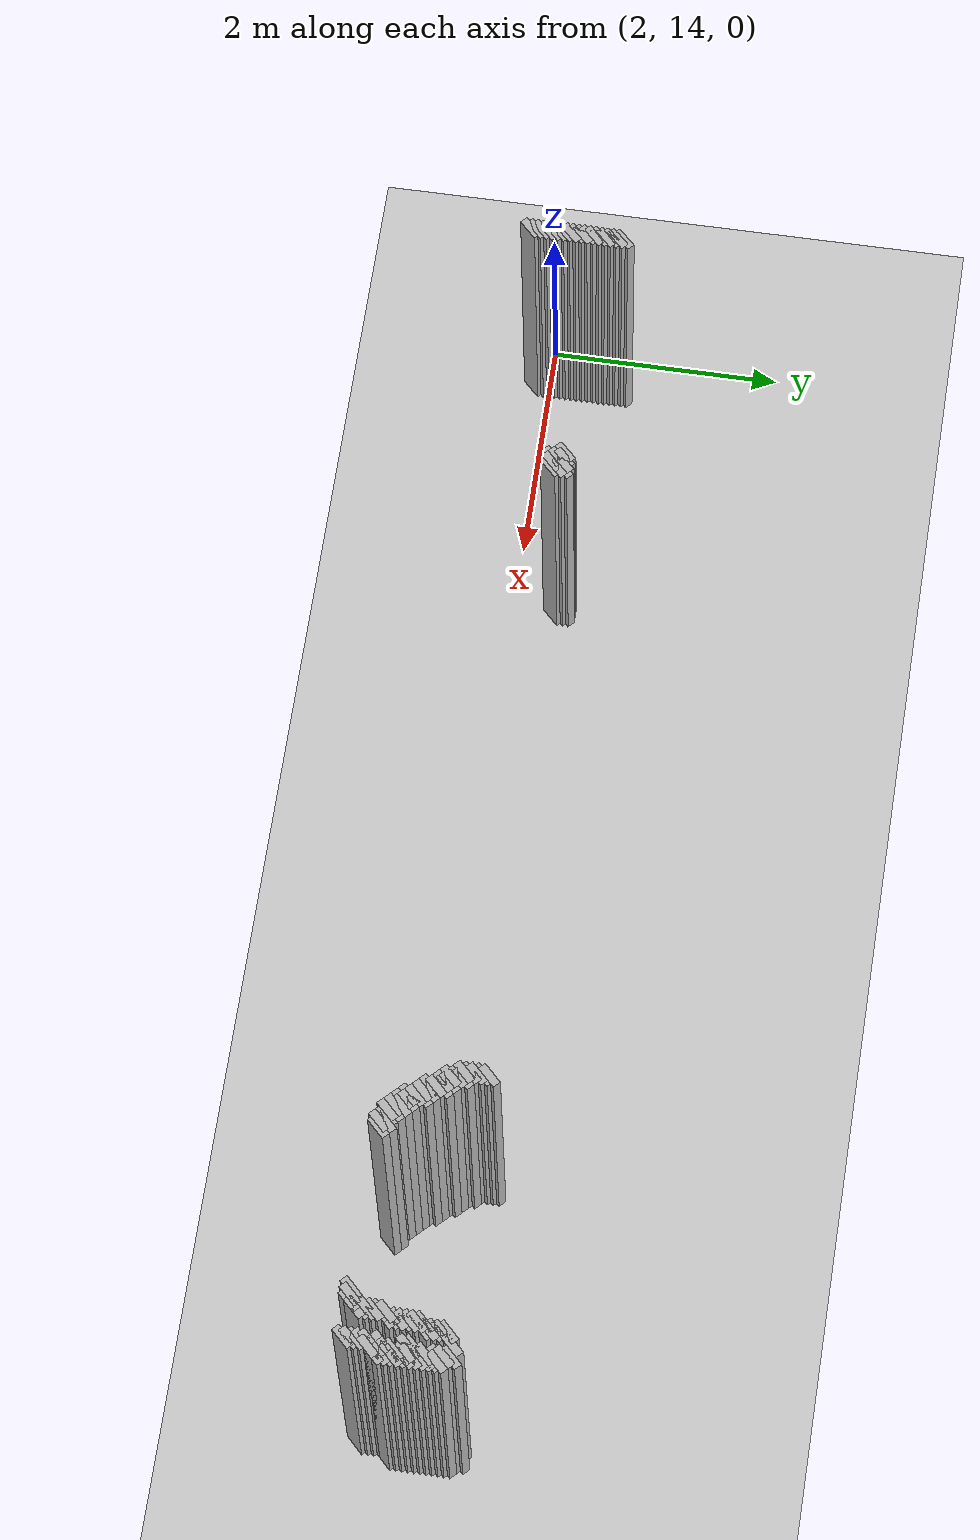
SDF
<sdf version="1.5">
 <world name="default">
  <include><uri>model://ground_plane</uri></include>
  <include><uri>model://sun</uri></include>
  <model name="grey_wall_531">
   <static>1</static>
   <link name="link">
    <pose>12.3 14.700000000000001  1.4 0 0 -0.7853981633974483</pose>
    <collision name="collision">
     <geometry><box><size>0.07071067811865576 .2  2.8</size></box></geometry>
    </collision>
    <visual name="visual">
     <cast_shadows>0</cast_shadows>
     <geometry><box><size>0.07071067811865576 .2  2.8</size></box></geometry>
    </visual>
   </link>
  </model>
  <model name="grey_wall_532">
   <static>1</static>
   <link name="link">
    <pose>12.4 14.700000000000001  1.4 0 0 -0.7853981633974483</pose>
    <collision name="collision">
     <geometry><box><size>0.07071067811865576 .2  2.8</size></box></geometry>
    </collision>
    <visual name="visual">
     <cast_shadows>0</cast_shadows>
     <geometry><box><size>0.07071067811865576 .2  2.8</size></box></geometry>
    </visual>
   </link>
  </model>
  <model name="grey_wall_533">
   <static>1</static>
   <link name="link">
    <pose>2.35 14.65  1.4 0 0 -0.7853981633974572</pose>
    <collision name="collision">
     <geometry><box><size>0.07071067811865513 .2  2.8</size></box></geometry>
    </collision>
    <visual name="visual">
     <cast_shadows>0</cast_shadows>
     <geometry><box><size>0.07071067811865513 .2  2.8</size></box></geometry>
    </visual>
   </link>
  </model>
  <model name="grey_wall_534">
   <static>1</static>
   <link name="link">
    <pose>10.05 14.65  1.4 0 0 -0.7853981633974483</pose>
    <collision name="collision">
     <geometry><box><size>0.07071067811865576 .2  2.8</size></box></geometry>
    </collision>
    <visual name="visual">
     <cast_shadows>0</cast_shadows>
     <geometry><box><size>0.07071067811865576 .2  2.8</size></box></geometry>
    </visual>
   </link>
  </model>
  <model name="grey_wall_535">
   <static>1</static>
   <link name="link">
    <pose>12.200000000000001 14.65  1.4 0 0 -0.7853981633974483</pose>
    <collision name="collision">
     <geometry><box><size>0.07071067811865576 .2  2.8</size></box></geometry>
    </collision>
    <visual name="visual">
     <cast_shadows>0</cast_shadows>
     <geometry><box><size>0.07071067811865576 .2  2.8</size></box></geometry>
    </visual>
   </link>
  </model>
  <model name="grey_wall_536">
   <static>1</static>
   <link name="link">
    <pose>12.4 14.65  1.4 0 0 -0.7853981633974483</pose>
    <collision name="collision">
     <geometry><box><size>0.07071067811865576 .2  2.8</size></box></geometry>
    </collision>
    <visual name="visual">
     <cast_shadows>0</cast_shadows>
     <geometry><box><size>0.07071067811865576 .2  2.8</size></box></geometry>
    </visual>
   </link>
  </model>
  <model name="grey_wall_537">
   <static>1</static>
   <link name="link">
    <pose>2.35 14.600000000000001  1.4 0 0 -0.7853981633974572</pose>
    <collision name="collision">
     <geometry><box><size>0.07071067811865513 .2  2.8</size></box></geometry>
    </collision>
    <visual name="visual">
     <cast_shadows>0</cast_shadows>
     <geometry><box><size>0.07071067811865513 .2  2.8</size></box></geometry>
    </visual>
   </link>
  </model>
  <model name="grey_wall_538">
   <static>1</static>
   <link name="link">
    <pose>10.05 14.600000000000001  1.4 0 0 -0.7853981633974483</pose>
    <collision name="collision">
     <geometry><box><size>0.07071067811865576 .2  2.8</size></box></geometry>
    </collision>
    <visual name="visual">
     <cast_shadows>0</cast_shadows>
     <geometry><box><size>0.07071067811865576 .2  2.8</size></box></geometry>
    </visual>
   </link>
  </model>
  <model name="grey_wall_539">
   <static>1</static>
   <link name="link">
    <pose>12.200000000000001 14.600000000000001  1.4 0 0 -0.7853981633974483</pose>
    <collision name="collision">
     <geometry><box><size>0.07071067811865576 .2  2.8</size></box></geometry>
    </collision>
    <visual name="visual">
     <cast_shadows>0</cast_shadows>
     <geometry><box><size>0.07071067811865576 .2  2.8</size></box></geometry>
    </visual>
   </link>
  </model>
  <model name="grey_wall_540">
   <static>1</static>
   <link name="link">
    <pose>12.4 14.600000000000001  1.4 0 0 -0.7853981633974483</pose>
    <collision name="collision">
     <geometry><box><size>0.07071067811865576 .2  2.8</size></box></geometry>
    </collision>
    <visual name="visual">
     <cast_shadows>0</cast_shadows>
     <geometry><box><size>0.07071067811865576 .2  2.8</size></box></geometry>
    </visual>
   </link>
  </model>
  <model name="grey_wall_541">
   <static>1</static>
   <link name="link">
    <pose>12.450000000000001 14.600000000000001  1.4 0 0 -0.7853981633974483</pose>
    <collision name="collision">
     <geometry><box><size>0.07071067811865576 .2  2.8</size></box></geometry>
    </collision>
    <visual name="visual">
     <cast_shadows>0</cast_shadows>
     <geometry><box><size>0.07071067811865576 .2  2.8</size></box></geometry>
    </visual>
   </link>
  </model>
  <model name="grey_wall_542">
   <static>1</static>
   <link name="link">
    <pose>2.35 14.55  1.4 0 0 -0.7853981633974572</pose>
    <collision name="collision">
     <geometry><box><size>0.07071067811865513 .2  2.8</size></box></geometry>
    </collision>
    <visual name="visual">
     <cast_shadows>0</cast_shadows>
     <geometry><box><size>0.07071067811865513 .2  2.8</size></box></geometry>
    </visual>
   </link>
  </model>
  <model name="grey_wall_543">
   <static>1</static>
   <link name="link">
    <pose>10.05 14.55  1.4 0 0 -0.7853981633974483</pose>
    <collision name="collision">
     <geometry><box><size>0.07071067811865576 .2  2.8</size></box></geometry>
    </collision>
    <visual name="visual">
     <cast_shadows>0</cast_shadows>
     <geometry><box><size>0.07071067811865576 .2  2.8</size></box></geometry>
    </visual>
   </link>
  </model>
  <model name="grey_wall_544">
   <static>1</static>
   <link name="link">
    <pose>12.200000000000001 14.55  1.4 0 0 -0.7853981633974483</pose>
    <collision name="collision">
     <geometry><box><size>0.07071067811865576 .2  2.8</size></box></geometry>
    </collision>
    <visual name="visual">
     <cast_shadows>0</cast_shadows>
     <geometry><box><size>0.07071067811865576 .2  2.8</size></box></geometry>
    </visual>
   </link>
  </model>
  <model name="grey_wall_545">
   <static>1</static>
   <link name="link">
    <pose>12.450000000000001 14.55  1.4 0 0 -0.7853981633974483</pose>
    <collision name="collision">
     <geometry><box><size>0.07071067811865576 .2  2.8</size></box></geometry>
    </collision>
    <visual name="visual">
     <cast_shadows>0</cast_shadows>
     <geometry><box><size>0.07071067811865576 .2  2.8</size></box></geometry>
    </visual>
   </link>
  </model>
  <model name="grey_wall_546">
   <static>1</static>
   <link name="link">
    <pose>2.35 14.5  1.4 0 0 -0.7853981633974572</pose>
    <collision name="collision">
     <geometry><box><size>0.07071067811865513 .2  2.8</size></box></geometry>
    </collision>
    <visual name="visual">
     <cast_shadows>0</cast_shadows>
     <geometry><box><size>0.07071067811865513 .2  2.8</size></box></geometry>
    </visual>
   </link>
  </model>
  <model name="grey_wall_547">
   <static>1</static>
   <link name="link">
    <pose>10.05 14.5  1.4 0 0 -0.7853981633974483</pose>
    <collision name="collision">
     <geometry><box><size>0.07071067811865576 .2  2.8</size></box></geometry>
    </collision>
    <visual name="visual">
     <cast_shadows>0</cast_shadows>
     <geometry><box><size>0.07071067811865576 .2  2.8</size></box></geometry>
    </visual>
   </link>
  </model>
  <model name="grey_wall_548">
   <static>1</static>
   <link name="link">
    <pose>12.200000000000001 14.5  1.4 0 0 -0.7853981633974483</pose>
    <collision name="collision">
     <geometry><box><size>0.07071067811865576 .2  2.8</size></box></geometry>
    </collision>
    <visual name="visual">
     <cast_shadows>0</cast_shadows>
     <geometry><box><size>0.07071067811865576 .2  2.8</size></box></geometry>
    </visual>
   </link>
  </model>
  <model name="grey_wall_549">
   <static>1</static>
   <link name="link">
    <pose>12.4 14.5  1.4 0 0 -0.7853981633974483</pose>
    <collision name="collision">
     <geometry><box><size>0.07071067811865576 .2  2.8</size></box></geometry>
    </collision>
    <visual name="visual">
     <cast_shadows>0</cast_shadows>
     <geometry><box><size>0.07071067811865576 .2  2.8</size></box></geometry>
    </visual>
   </link>
  </model>
  <model name="grey_wall_550">
   <static>1</static>
   <link name="link">
    <pose>12.450000000000001 14.5  1.4 0 0 -0.7853981633974483</pose>
    <collision name="collision">
     <geometry><box><size>0.07071067811865576 .2  2.8</size></box></geometry>
    </collision>
    <visual name="visual">
     <cast_shadows>0</cast_shadows>
     <geometry><box><size>0.07071067811865576 .2  2.8</size></box></geometry>
    </visual>
   </link>
  </model>
  <model name="grey_wall_551">
   <static>1</static>
   <link name="link">
    <pose>2.35 14.450000000000001  1.4 0 0 -0.7853981633974572</pose>
    <collision name="collision">
     <geometry><box><size>0.07071067811865513 .2  2.8</size></box></geometry>
    </collision>
    <visual name="visual">
     <cast_shadows>0</cast_shadows>
     <geometry><box><size>0.07071067811865513 .2  2.8</size></box></geometry>
    </visual>
   </link>
  </model>
  <model name="grey_wall_552">
   <static>1</static>
   <link name="link">
    <pose>4.45 14.450000000000001  1.4 0 0 -0.7853981633974483</pose>
    <collision name="collision">
     <geometry><box><size>0.07071067811865576 .2  2.8</size></box></geometry>
    </collision>
    <visual name="visual">
     <cast_shadows>0</cast_shadows>
     <geometry><box><size>0.07071067811865576 .2  2.8</size></box></geometry>
    </visual>
   </link>
  </model>
  <model name="grey_wall_553">
   <static>1</static>
   <link name="link">
    <pose>4.5 14.450000000000001  1.4 0 0 -0.7853981633974483</pose>
    <collision name="collision">
     <geometry><box><size>0.07071067811865576 .2  2.8</size></box></geometry>
    </collision>
    <visual name="visual">
     <cast_shadows>0</cast_shadows>
     <geometry><box><size>0.07071067811865576 .2  2.8</size></box></geometry>
    </visual>
   </link>
  </model>
  <model name="grey_wall_554">
   <static>1</static>
   <link name="link">
    <pose>4.55 14.450000000000001  1.4 0 0 -0.7853981633974483</pose>
    <collision name="collision">
     <geometry><box><size>0.07071067811865576 .2  2.8</size></box></geometry>
    </collision>
    <visual name="visual">
     <cast_shadows>0</cast_shadows>
     <geometry><box><size>0.07071067811865576 .2  2.8</size></box></geometry>
    </visual>
   </link>
  </model>
  <model name="grey_wall_555">
   <static>1</static>
   <link name="link">
    <pose>4.6000000000000005 14.450000000000001  1.4 0 0 -0.7853981633974483</pose>
    <collision name="collision">
     <geometry><box><size>0.07071067811865576 .2  2.8</size></box></geometry>
    </collision>
    <visual name="visual">
     <cast_shadows>0</cast_shadows>
     <geometry><box><size>0.07071067811865576 .2  2.8</size></box></geometry>
    </visual>
   </link>
  </model>
  <model name="grey_wall_556">
   <static>1</static>
   <link name="link">
    <pose>10.05 14.450000000000001  1.4 0 0 -0.7853981633974483</pose>
    <collision name="collision">
     <geometry><box><size>0.07071067811865576 .2  2.8</size></box></geometry>
    </collision>
    <visual name="visual">
     <cast_shadows>0</cast_shadows>
     <geometry><box><size>0.07071067811865576 .2  2.8</size></box></geometry>
    </visual>
   </link>
  </model>
  <model name="grey_wall_557">
   <static>1</static>
   <link name="link">
    <pose>10.100000000000001 14.450000000000001  1.4 0 0 -0.7853981633974483</pose>
    <collision name="collision">
     <geometry><box><size>0.07071067811865576 .2  2.8</size></box></geometry>
    </collision>
    <visual name="visual">
     <cast_shadows>0</cast_shadows>
     <geometry><box><size>0.07071067811865576 .2  2.8</size></box></geometry>
    </visual>
   </link>
  </model>
  <model name="grey_wall_558">
   <static>1</static>
   <link name="link">
    <pose>12.15 14.450000000000001  1.4 0 0 -0.7853981633974483</pose>
    <collision name="collision">
     <geometry><box><size>0.07071067811865576 .2  2.8</size></box></geometry>
    </collision>
    <visual name="visual">
     <cast_shadows>0</cast_shadows>
     <geometry><box><size>0.07071067811865576 .2  2.8</size></box></geometry>
    </visual>
   </link>
  </model>
  <model name="grey_wall_559">
   <static>1</static>
   <link name="link">
    <pose>12.200000000000001 14.450000000000001  1.4 0 0 -0.7853981633974483</pose>
    <collision name="collision">
     <geometry><box><size>0.07071067811865576 .2  2.8</size></box></geometry>
    </collision>
    <visual name="visual">
     <cast_shadows>0</cast_shadows>
     <geometry><box><size>0.07071067811865576 .2  2.8</size></box></geometry>
    </visual>
   </link>
  </model>
  <model name="grey_wall_560">
   <static>1</static>
   <link name="link">
    <pose>12.450000000000001 14.450000000000001  1.4 0 0 -0.7853981633974483</pose>
    <collision name="collision">
     <geometry><box><size>0.07071067811865576 .2  2.8</size></box></geometry>
    </collision>
    <visual name="visual">
     <cast_shadows>0</cast_shadows>
     <geometry><box><size>0.07071067811865576 .2  2.8</size></box></geometry>
    </visual>
   </link>
  </model>
  <model name="grey_wall_561">
   <static>1</static>
   <link name="link">
    <pose>2.35 14.4  1.4 0 0 -0.7853981633974572</pose>
    <collision name="collision">
     <geometry><box><size>0.07071067811865513 .2  2.8</size></box></geometry>
    </collision>
    <visual name="visual">
     <cast_shadows>0</cast_shadows>
     <geometry><box><size>0.07071067811865513 .2  2.8</size></box></geometry>
    </visual>
   </link>
  </model>
  <model name="grey_wall_562">
   <static>1</static>
   <link name="link">
    <pose>4.5 14.4  1.4 0 0 -0.7853981633974483</pose>
    <collision name="collision">
     <geometry><box><size>0.07071067811865576 .2  2.8</size></box></geometry>
    </collision>
    <visual name="visual">
     <cast_shadows>0</cast_shadows>
     <geometry><box><size>0.07071067811865576 .2  2.8</size></box></geometry>
    </visual>
   </link>
  </model>
  <model name="grey_wall_563">
   <static>1</static>
   <link name="link">
    <pose>4.6000000000000005 14.4  1.4 0 0 -0.7853981633974483</pose>
    <collision name="collision">
     <geometry><box><size>0.07071067811865576 .2  2.8</size></box></geometry>
    </collision>
    <visual name="visual">
     <cast_shadows>0</cast_shadows>
     <geometry><box><size>0.07071067811865576 .2  2.8</size></box></geometry>
    </visual>
   </link>
  </model>
  <model name="grey_wall_564">
   <static>1</static>
   <link name="link">
    <pose>10.100000000000001 14.4  1.4 0 0 -0.7853981633974483</pose>
    <collision name="collision">
     <geometry><box><size>0.07071067811865576 .2  2.8</size></box></geometry>
    </collision>
    <visual name="visual">
     <cast_shadows>0</cast_shadows>
     <geometry><box><size>0.07071067811865576 .2  2.8</size></box></geometry>
    </visual>
   </link>
  </model>
  <model name="grey_wall_565">
   <static>1</static>
   <link name="link">
    <pose>12.15 14.4  1.4 0 0 -0.7853981633974483</pose>
    <collision name="collision">
     <geometry><box><size>0.07071067811865576 .2  2.8</size></box></geometry>
    </collision>
    <visual name="visual">
     <cast_shadows>0</cast_shadows>
     <geometry><box><size>0.07071067811865576 .2  2.8</size></box></geometry>
    </visual>
   </link>
  </model>
  <model name="grey_wall_566">
   <static>1</static>
   <link name="link">
    <pose>12.350000000000001 14.4  1.4 0 0 -0.7853981633974483</pose>
    <collision name="collision">
     <geometry><box><size>0.07071067811865576 .2  2.8</size></box></geometry>
    </collision>
    <visual name="visual">
     <cast_shadows>0</cast_shadows>
     <geometry><box><size>0.07071067811865576 .2  2.8</size></box></geometry>
    </visual>
   </link>
  </model>
  <model name="grey_wall_567">
   <static>1</static>
   <link name="link">
    <pose>12.450000000000001 14.4  1.4 0 0 -0.7853981633974483</pose>
    <collision name="collision">
     <geometry><box><size>0.07071067811865576 .2  2.8</size></box></geometry>
    </collision>
    <visual name="visual">
     <cast_shadows>0</cast_shadows>
     <geometry><box><size>0.07071067811865576 .2  2.8</size></box></geometry>
    </visual>
   </link>
  </model>
  <model name="grey_wall_568">
   <static>1</static>
   <link name="link">
    <pose>2.35 14.350000000000001  1.4 0 0 -0.7853981633974572</pose>
    <collision name="collision">
     <geometry><box><size>0.07071067811865513 .2  2.8</size></box></geometry>
    </collision>
    <visual name="visual">
     <cast_shadows>0</cast_shadows>
     <geometry><box><size>0.07071067811865513 .2  2.8</size></box></geometry>
    </visual>
   </link>
  </model>
  <model name="grey_wall_569">
   <static>1</static>
   <link name="link">
    <pose>4.5 14.350000000000001  1.4 0 0 -0.7853981633974483</pose>
    <collision name="collision">
     <geometry><box><size>0.07071067811865576 .2  2.8</size></box></geometry>
    </collision>
    <visual name="visual">
     <cast_shadows>0</cast_shadows>
     <geometry><box><size>0.07071067811865576 .2  2.8</size></box></geometry>
    </visual>
   </link>
  </model>
  <model name="grey_wall_570">
   <static>1</static>
   <link name="link">
    <pose>4.55 14.350000000000001  1.4 0 0 -0.7853981633974483</pose>
    <collision name="collision">
     <geometry><box><size>0.07071067811865576 .2  2.8</size></box></geometry>
    </collision>
    <visual name="visual">
     <cast_shadows>0</cast_shadows>
     <geometry><box><size>0.07071067811865576 .2  2.8</size></box></geometry>
    </visual>
   </link>
  </model>
  <model name="grey_wall_571">
   <static>1</static>
   <link name="link">
    <pose>4.6000000000000005 14.350000000000001  1.4 0 0 -0.7853981633974483</pose>
    <collision name="collision">
     <geometry><box><size>0.07071067811865576 .2  2.8</size></box></geometry>
    </collision>
    <visual name="visual">
     <cast_shadows>0</cast_shadows>
     <geometry><box><size>0.07071067811865576 .2  2.8</size></box></geometry>
    </visual>
   </link>
  </model>
  <model name="grey_wall_572">
   <static>1</static>
   <link name="link">
    <pose>10.100000000000001 14.350000000000001  1.4 0 0 -0.7853981633974483</pose>
    <collision name="collision">
     <geometry><box><size>0.07071067811865576 .2  2.8</size></box></geometry>
    </collision>
    <visual name="visual">
     <cast_shadows>0</cast_shadows>
     <geometry><box><size>0.07071067811865576 .2  2.8</size></box></geometry>
    </visual>
   </link>
  </model>
  <model name="grey_wall_573">
   <static>1</static>
   <link name="link">
    <pose>10.15 14.350000000000001  1.4 0 0 -0.7853981633974483</pose>
    <collision name="collision">
     <geometry><box><size>0.07071067811865576 .2  2.8</size></box></geometry>
    </collision>
    <visual name="visual">
     <cast_shadows>0</cast_shadows>
     <geometry><box><size>0.07071067811865576 .2  2.8</size></box></geometry>
    </visual>
   </link>
  </model>
  <model name="grey_wall_574">
   <static>1</static>
   <link name="link">
    <pose>12.15 14.350000000000001  1.4 0 0 -0.7853981633974483</pose>
    <collision name="collision">
     <geometry><box><size>0.07071067811865576 .2  2.8</size></box></geometry>
    </collision>
    <visual name="visual">
     <cast_shadows>0</cast_shadows>
     <geometry><box><size>0.07071067811865576 .2  2.8</size></box></geometry>
    </visual>
   </link>
  </model>
  <model name="grey_wall_575">
   <static>1</static>
   <link name="link">
    <pose>12.350000000000001 14.350000000000001  1.4 0 0 -0.7853981633974483</pose>
    <collision name="collision">
     <geometry><box><size>0.07071067811865576 .2  2.8</size></box></geometry>
    </collision>
    <visual name="visual">
     <cast_shadows>0</cast_shadows>
     <geometry><box><size>0.07071067811865576 .2  2.8</size></box></geometry>
    </visual>
   </link>
  </model>
  <model name="grey_wall_576">
   <static>1</static>
   <link name="link">
    <pose>12.4 14.350000000000001  1.4 0 0 -0.7853981633974483</pose>
    <collision name="collision">
     <geometry><box><size>0.07071067811865576 .2  2.8</size></box></geometry>
    </collision>
    <visual name="visual">
     <cast_shadows>0</cast_shadows>
     <geometry><box><size>0.07071067811865576 .2  2.8</size></box></geometry>
    </visual>
   </link>
  </model>
  <model name="grey_wall_577">
   <static>1</static>
   <link name="link">
    <pose>12.450000000000001 14.350000000000001  1.4 0 0 -0.7853981633974483</pose>
    <collision name="collision">
     <geometry><box><size>0.07071067811865576 .2  2.8</size></box></geometry>
    </collision>
    <visual name="visual">
     <cast_shadows>0</cast_shadows>
     <geometry><box><size>0.07071067811865576 .2  2.8</size></box></geometry>
    </visual>
   </link>
  </model>
  <model name="grey_wall_578">
   <static>1</static>
   <link name="link">
    <pose>2.35 14.3  1.4 0 0 -0.7853981633974572</pose>
    <collision name="collision">
     <geometry><box><size>0.07071067811865513 .2  2.8</size></box></geometry>
    </collision>
    <visual name="visual">
     <cast_shadows>0</cast_shadows>
     <geometry><box><size>0.07071067811865513 .2  2.8</size></box></geometry>
    </visual>
   </link>
  </model>
  <model name="grey_wall_579">
   <static>1</static>
   <link name="link">
    <pose>10.15 14.3  1.4 0 0 -0.7853981633974483</pose>
    <collision name="collision">
     <geometry><box><size>0.07071067811865576 .2  2.8</size></box></geometry>
    </collision>
    <visual name="visual">
     <cast_shadows>0</cast_shadows>
     <geometry><box><size>0.07071067811865576 .2  2.8</size></box></geometry>
    </visual>
   </link>
  </model>
  <model name="grey_wall_580">
   <static>1</static>
   <link name="link">
    <pose>10.200000000000001 14.3  1.4 0 0 -0.7853981633974483</pose>
    <collision name="collision">
     <geometry><box><size>0.07071067811865576 .2  2.8</size></box></geometry>
    </collision>
    <visual name="visual">
     <cast_shadows>0</cast_shadows>
     <geometry><box><size>0.07071067811865576 .2  2.8</size></box></geometry>
    </visual>
   </link>
  </model>
  <model name="grey_wall_581">
   <static>1</static>
   <link name="link">
    <pose>12.15 14.3  1.4 0 0 -0.7853981633974483</pose>
    <collision name="collision">
     <geometry><box><size>0.07071067811865576 .2  2.8</size></box></geometry>
    </collision>
    <visual name="visual">
     <cast_shadows>0</cast_shadows>
     <geometry><box><size>0.07071067811865576 .2  2.8</size></box></geometry>
    </visual>
   </link>
  </model>
  <model name="grey_wall_582">
   <static>1</static>
   <link name="link">
    <pose>12.450000000000001 14.3  1.4 0 0 -0.7853981633974483</pose>
    <collision name="collision">
     <geometry><box><size>0.07071067811865576 .2  2.8</size></box></geometry>
    </collision>
    <visual name="visual">
     <cast_shadows>0</cast_shadows>
     <geometry><box><size>0.07071067811865576 .2  2.8</size></box></geometry>
    </visual>
   </link>
  </model>
  <model name="grey_wall_583">
   <static>1</static>
   <link name="link">
    <pose>2.35 14.25  1.4 0 0 -0.7853981633974572</pose>
    <collision name="collision">
     <geometry><box><size>0.07071067811865513 .2  2.8</size></box></geometry>
    </collision>
    <visual name="visual">
     <cast_shadows>0</cast_shadows>
     <geometry><box><size>0.07071067811865513 .2  2.8</size></box></geometry>
    </visual>
   </link>
  </model>
  <model name="grey_wall_584">
   <static>1</static>
   <link name="link">
    <pose>10.200000000000001 14.25  1.4 0 0 -0.7853981633974483</pose>
    <collision name="collision">
     <geometry><box><size>0.07071067811865576 .2  2.8</size></box></geometry>
    </collision>
    <visual name="visual">
     <cast_shadows>0</cast_shadows>
     <geometry><box><size>0.07071067811865576 .2  2.8</size></box></geometry>
    </visual>
   </link>
  </model>
  <model name="grey_wall_585">
   <static>1</static>
   <link name="link">
    <pose>12.15 14.25  1.4 0 0 -0.7853981633974483</pose>
    <collision name="collision">
     <geometry><box><size>0.07071067811865576 .2  2.8</size></box></geometry>
    </collision>
    <visual name="visual">
     <cast_shadows>0</cast_shadows>
     <geometry><box><size>0.07071067811865576 .2  2.8</size></box></geometry>
    </visual>
   </link>
  </model>
  <model name="grey_wall_586">
   <static>1</static>
   <link name="link">
    <pose>12.4 14.25  1.4 0 0 -0.7853981633974483</pose>
    <collision name="collision">
     <geometry><box><size>0.07071067811865576 .2  2.8</size></box></geometry>
    </collision>
    <visual name="visual">
     <cast_shadows>0</cast_shadows>
     <geometry><box><size>0.07071067811865576 .2  2.8</size></box></geometry>
    </visual>
   </link>
  </model>
  <model name="grey_wall_587">
   <static>1</static>
   <link name="link">
    <pose>12.450000000000001 14.25  1.4 0 0 -0.7853981633974483</pose>
    <collision name="collision">
     <geometry><box><size>0.07071067811865576 .2  2.8</size></box></geometry>
    </collision>
    <visual name="visual">
     <cast_shadows>0</cast_shadows>
     <geometry><box><size>0.07071067811865576 .2  2.8</size></box></geometry>
    </visual>
   </link>
  </model>
  <model name="grey_wall_588">
   <static>1</static>
   <link name="link">
    <pose>2.35 14.200000000000001  1.4 0 0 -0.7853981633974572</pose>
    <collision name="collision">
     <geometry><box><size>0.07071067811865513 .2  2.8</size></box></geometry>
    </collision>
    <visual name="visual">
     <cast_shadows>0</cast_shadows>
     <geometry><box><size>0.07071067811865513 .2  2.8</size></box></geometry>
    </visual>
   </link>
  </model>
  <model name="grey_wall_589">
   <static>1</static>
   <link name="link">
    <pose>10.200000000000001 14.200000000000001  1.4 0 0 -0.7853981633974483</pose>
    <collision name="collision">
     <geometry><box><size>0.07071067811865576 .2  2.8</size></box></geometry>
    </collision>
    <visual name="visual">
     <cast_shadows>0</cast_shadows>
     <geometry><box><size>0.07071067811865576 .2  2.8</size></box></geometry>
    </visual>
   </link>
  </model>
  <model name="grey_wall_590">
   <static>1</static>
   <link name="link">
    <pose>10.25 14.200000000000001  1.4 0 0 -0.7853981633974483</pose>
    <collision name="collision">
     <geometry><box><size>0.07071067811865576 .2  2.8</size></box></geometry>
    </collision>
    <visual name="visual">
     <cast_shadows>0</cast_shadows>
     <geometry><box><size>0.07071067811865576 .2  2.8</size></box></geometry>
    </visual>
   </link>
  </model>
  <model name="grey_wall_591">
   <static>1</static>
   <link name="link">
    <pose>12.15 14.200000000000001  1.4 0 0 -0.7853981633974483</pose>
    <collision name="collision">
     <geometry><box><size>0.07071067811865576 .2  2.8</size></box></geometry>
    </collision>
    <visual name="visual">
     <cast_shadows>0</cast_shadows>
     <geometry><box><size>0.07071067811865576 .2  2.8</size></box></geometry>
    </visual>
   </link>
  </model>
  <model name="grey_wall_592">
   <static>1</static>
   <link name="link">
    <pose>12.4 14.200000000000001  1.4 0 0 -0.7853981633974483</pose>
    <collision name="collision">
     <geometry><box><size>0.07071067811865576 .2  2.8</size></box></geometry>
    </collision>
    <visual name="visual">
     <cast_shadows>0</cast_shadows>
     <geometry><box><size>0.07071067811865576 .2  2.8</size></box></geometry>
    </visual>
   </link>
  </model>
  <model name="grey_wall_593">
   <static>1</static>
   <link name="link">
    <pose>12.450000000000001 14.200000000000001  1.4 0 0 -0.7853981633974483</pose>
    <collision name="collision">
     <geometry><box><size>0.07071067811865576 .2  2.8</size></box></geometry>
    </collision>
    <visual name="visual">
     <cast_shadows>0</cast_shadows>
     <geometry><box><size>0.07071067811865576 .2  2.8</size></box></geometry>
    </visual>
   </link>
  </model>
  <model name="grey_wall_594">
   <static>1</static>
   <link name="link">
    <pose>2.35 14.15  1.4 0 0 -0.7853981633974572</pose>
    <collision name="collision">
     <geometry><box><size>0.07071067811865513 .2  2.8</size></box></geometry>
    </collision>
    <visual name="visual">
     <cast_shadows>0</cast_shadows>
     <geometry><box><size>0.07071067811865513 .2  2.8</size></box></geometry>
    </visual>
   </link>
  </model>
  <model name="grey_wall_595">
   <static>1</static>
   <link name="link">
    <pose>10.25 14.15  1.4 0 0 -0.7853981633974483</pose>
    <collision name="collision">
     <geometry><box><size>0.07071067811865576 .2  2.8</size></box></geometry>
    </collision>
    <visual name="visual">
     <cast_shadows>0</cast_shadows>
     <geometry><box><size>0.07071067811865576 .2  2.8</size></box></geometry>
    </visual>
   </link>
  </model>
  <model name="grey_wall_596">
   <static>1</static>
   <link name="link">
    <pose>10.3 14.15  1.4 0 0 -0.7853981633974483</pose>
    <collision name="collision">
     <geometry><box><size>0.07071067811865576 .2  2.8</size></box></geometry>
    </collision>
    <visual name="visual">
     <cast_shadows>0</cast_shadows>
     <geometry><box><size>0.07071067811865576 .2  2.8</size></box></geometry>
    </visual>
   </link>
  </model>
  <model name="grey_wall_597">
   <static>1</static>
   <link name="link">
    <pose>12.100000000000001 14.15  1.4 0 0 -0.7853981633974483</pose>
    <collision name="collision">
     <geometry><box><size>0.07071067811865576 .2  2.8</size></box></geometry>
    </collision>
    <visual name="visual">
     <cast_shadows>0</cast_shadows>
     <geometry><box><size>0.07071067811865576 .2  2.8</size></box></geometry>
    </visual>
   </link>
  </model>
  <model name="grey_wall_598">
   <static>1</static>
   <link name="link">
    <pose>12.15 14.15  1.4 0 0 -0.7853981633974483</pose>
    <collision name="collision">
     <geometry><box><size>0.07071067811865576 .2  2.8</size></box></geometry>
    </collision>
    <visual name="visual">
     <cast_shadows>0</cast_shadows>
     <geometry><box><size>0.07071067811865576 .2  2.8</size></box></geometry>
    </visual>
   </link>
  </model>
  <model name="grey_wall_599">
   <static>1</static>
   <link name="link">
    <pose>12.350000000000001 14.15  1.4 0 0 -0.7853981633974483</pose>
    <collision name="collision">
     <geometry><box><size>0.07071067811865576 .2  2.8</size></box></geometry>
    </collision>
    <visual name="visual">
     <cast_shadows>0</cast_shadows>
     <geometry><box><size>0.07071067811865576 .2  2.8</size></box></geometry>
    </visual>
   </link>
  </model>
  <model name="grey_wall_600">
   <static>1</static>
   <link name="link">
    <pose>12.450000000000001 14.15  1.4 0 0 -0.7853981633974483</pose>
    <collision name="collision">
     <geometry><box><size>0.07071067811865576 .2  2.8</size></box></geometry>
    </collision>
    <visual name="visual">
     <cast_shadows>0</cast_shadows>
     <geometry><box><size>0.07071067811865576 .2  2.8</size></box></geometry>
    </visual>
   </link>
  </model>
  <model name="grey_wall_601">
   <static>1</static>
   <link name="link">
    <pose>2.35 14.100000000000001  1.4 0 0 -0.7853981633974572</pose>
    <collision name="collision">
     <geometry><box><size>0.07071067811865513 .2  2.8</size></box></geometry>
    </collision>
    <visual name="visual">
     <cast_shadows>0</cast_shadows>
     <geometry><box><size>0.07071067811865513 .2  2.8</size></box></geometry>
    </visual>
   </link>
  </model>
  <model name="grey_wall_602">
   <static>1</static>
   <link name="link">
    <pose>10.3 14.100000000000001  1.4 0 0 -0.7853981633974483</pose>
    <collision name="collision">
     <geometry><box><size>0.07071067811865576 .2  2.8</size></box></geometry>
    </collision>
    <visual name="visual">
     <cast_shadows>0</cast_shadows>
     <geometry><box><size>0.07071067811865576 .2  2.8</size></box></geometry>
    </visual>
   </link>
  </model>
  <model name="grey_wall_603">
   <static>1</static>
   <link name="link">
    <pose>12.100000000000001 14.100000000000001  1.4 0 0 -0.7853981633974483</pose>
    <collision name="collision">
     <geometry><box><size>0.07071067811865576 .2  2.8</size></box></geometry>
    </collision>
    <visual name="visual">
     <cast_shadows>0</cast_shadows>
     <geometry><box><size>0.07071067811865576 .2  2.8</size></box></geometry>
    </visual>
   </link>
  </model>
  <model name="grey_wall_604">
   <static>1</static>
   <link name="link">
    <pose>12.4 14.100000000000001  1.4 0 0 -0.7853981633974483</pose>
    <collision name="collision">
     <geometry><box><size>0.07071067811865576 .2  2.8</size></box></geometry>
    </collision>
    <visual name="visual">
     <cast_shadows>0</cast_shadows>
     <geometry><box><size>0.07071067811865576 .2  2.8</size></box></geometry>
    </visual>
   </link>
  </model>
  <model name="grey_wall_605">
   <static>1</static>
   <link name="link">
    <pose>12.450000000000001 14.100000000000001  1.4 0 0 -0.7853981633974483</pose>
    <collision name="collision">
     <geometry><box><size>0.07071067811865576 .2  2.8</size></box></geometry>
    </collision>
    <visual name="visual">
     <cast_shadows>0</cast_shadows>
     <geometry><box><size>0.07071067811865576 .2  2.8</size></box></geometry>
    </visual>
   </link>
  </model>
  <model name="grey_wall_606">
   <static>1</static>
   <link name="link">
    <pose>2.35 14.05  1.4 0 0 -0.7853981633974572</pose>
    <collision name="collision">
     <geometry><box><size>0.07071067811865513 .2  2.8</size></box></geometry>
    </collision>
    <visual name="visual">
     <cast_shadows>0</cast_shadows>
     <geometry><box><size>0.07071067811865513 .2  2.8</size></box></geometry>
    </visual>
   </link>
  </model>
  <model name="grey_wall_607">
   <static>1</static>
   <link name="link">
    <pose>10.3 14.05  1.4 0 0 -0.7853981633974483</pose>
    <collision name="collision">
     <geometry><box><size>0.07071067811865576 .2  2.8</size></box></geometry>
    </collision>
    <visual name="visual">
     <cast_shadows>0</cast_shadows>
     <geometry><box><size>0.07071067811865576 .2  2.8</size></box></geometry>
    </visual>
   </link>
  </model>
  <model name="grey_wall_608">
   <static>1</static>
   <link name="link">
    <pose>10.350000000000001 14.05  1.4 0 0 -0.7853981633974483</pose>
    <collision name="collision">
     <geometry><box><size>0.07071067811865576 .2  2.8</size></box></geometry>
    </collision>
    <visual name="visual">
     <cast_shadows>0</cast_shadows>
     <geometry><box><size>0.07071067811865576 .2  2.8</size></box></geometry>
    </visual>
   </link>
  </model>
  <model name="grey_wall_609">
   <static>1</static>
   <link name="link">
    <pose>12.100000000000001 14.05  1.4 0 0 -0.7853981633974483</pose>
    <collision name="collision">
     <geometry><box><size>0.07071067811865576 .2  2.8</size></box></geometry>
    </collision>
    <visual name="visual">
     <cast_shadows>0</cast_shadows>
     <geometry><box><size>0.07071067811865576 .2  2.8</size></box></geometry>
    </visual>
   </link>
  </model>
  <model name="grey_wall_610">
   <static>1</static>
   <link name="link">
    <pose>12.350000000000001 14.05  1.4 0 0 -0.7853981633974483</pose>
    <collision name="collision">
     <geometry><box><size>0.07071067811865576 .2  2.8</size></box></geometry>
    </collision>
    <visual name="visual">
     <cast_shadows>0</cast_shadows>
     <geometry><box><size>0.07071067811865576 .2  2.8</size></box></geometry>
    </visual>
   </link>
  </model>
  <model name="grey_wall_611">
   <static>1</static>
   <link name="link">
    <pose>12.4 14.05  1.4 0 0 -0.7853981633974483</pose>
    <collision name="collision">
     <geometry><box><size>0.07071067811865576 .2  2.8</size></box></geometry>
    </collision>
    <visual name="visual">
     <cast_shadows>0</cast_shadows>
     <geometry><box><size>0.07071067811865576 .2  2.8</size></box></geometry>
    </visual>
   </link>
  </model>
  <model name="grey_wall_612">
   <static>1</static>
   <link name="link">
    <pose>2.35 14.0  1.4 0 0 -0.7853981633974572</pose>
    <collision name="collision">
     <geometry><box><size>0.07071067811865513 .2  2.8</size></box></geometry>
    </collision>
    <visual name="visual">
     <cast_shadows>0</cast_shadows>
     <geometry><box><size>0.07071067811865513 .2  2.8</size></box></geometry>
    </visual>
   </link>
  </model>
  <model name="grey_wall_613">
   <static>1</static>
   <link name="link">
    <pose>10.350000000000001 14.0  1.4 0 0 -0.7853981633974483</pose>
    <collision name="collision">
     <geometry><box><size>0.07071067811865576 .2  2.8</size></box></geometry>
    </collision>
    <visual name="visual">
     <cast_shadows>0</cast_shadows>
     <geometry><box><size>0.07071067811865576 .2  2.8</size></box></geometry>
    </visual>
   </link>
  </model>
  <model name="grey_wall_614">
   <static>1</static>
   <link name="link">
    <pose>10.4 14.0  1.4 0 0 -0.7853981633974483</pose>
    <collision name="collision">
     <geometry><box><size>0.07071067811865576 .2  2.8</size></box></geometry>
    </collision>
    <visual name="visual">
     <cast_shadows>0</cast_shadows>
     <geometry><box><size>0.07071067811865576 .2  2.8</size></box></geometry>
    </visual>
   </link>
  </model>
  <model name="grey_wall_615">
   <static>1</static>
   <link name="link">
    <pose>12.100000000000001 14.0  1.4 0 0 -0.7853981633974483</pose>
    <collision name="collision">
     <geometry><box><size>0.07071067811865576 .2  2.8</size></box></geometry>
    </collision>
    <visual name="visual">
     <cast_shadows>0</cast_shadows>
     <geometry><box><size>0.07071067811865576 .2  2.8</size></box></geometry>
    </visual>
   </link>
  </model>
  <model name="grey_wall_616">
   <static>1</static>
   <link name="link">
    <pose>12.350000000000001 14.0  1.4 0 0 -0.7853981633974483</pose>
    <collision name="collision">
     <geometry><box><size>0.07071067811865576 .2  2.8</size></box></geometry>
    </collision>
    <visual name="visual">
     <cast_shadows>0</cast_shadows>
     <geometry><box><size>0.07071067811865576 .2  2.8</size></box></geometry>
    </visual>
   </link>
  </model>
  <model name="grey_wall_617">
   <static>1</static>
   <link name="link">
    <pose>2.35 13.950000000000001  1.4 0 0 -0.7853981633974572</pose>
    <collision name="collision">
     <geometry><box><size>0.07071067811865513 .2  2.8</size></box></geometry>
    </collision>
    <visual name="visual">
     <cast_shadows>0</cast_shadows>
     <geometry><box><size>0.07071067811865513 .2  2.8</size></box></geometry>
    </visual>
   </link>
  </model>
  <model name="grey_wall_618">
   <static>1</static>
   <link name="link">
    <pose>10.4 13.950000000000001  1.4 0 0 -0.7853981633974483</pose>
    <collision name="collision">
     <geometry><box><size>0.07071067811865576 .2  2.8</size></box></geometry>
    </collision>
    <visual name="visual">
     <cast_shadows>0</cast_shadows>
     <geometry><box><size>0.07071067811865576 .2  2.8</size></box></geometry>
    </visual>
   </link>
  </model>
  <model name="grey_wall_619">
   <static>1</static>
   <link name="link">
    <pose>10.450000000000001 13.950000000000001  1.4 0 0 -0.7853981633974483</pose>
    <collision name="collision">
     <geometry><box><size>0.07071067811865576 .2  2.8</size></box></geometry>
    </collision>
    <visual name="visual">
     <cast_shadows>0</cast_shadows>
     <geometry><box><size>0.07071067811865576 .2  2.8</size></box></geometry>
    </visual>
   </link>
  </model>
  <model name="grey_wall_620">
   <static>1</static>
   <link name="link">
    <pose>12.100000000000001 13.950000000000001  1.4 0 0 -0.7853981633974483</pose>
    <collision name="collision">
     <geometry><box><size>0.07071067811865576 .2  2.8</size></box></geometry>
    </collision>
    <visual name="visual">
     <cast_shadows>0</cast_shadows>
     <geometry><box><size>0.07071067811865576 .2  2.8</size></box></geometry>
    </visual>
   </link>
  </model>
  <model name="grey_wall_621">
   <static>1</static>
   <link name="link">
    <pose>12.350000000000001 13.950000000000001  1.4 0 0 -0.7853981633974483</pose>
    <collision name="collision">
     <geometry><box><size>0.07071067811865576 .2  2.8</size></box></geometry>
    </collision>
    <visual name="visual">
     <cast_shadows>0</cast_shadows>
     <geometry><box><size>0.07071067811865576 .2  2.8</size></box></geometry>
    </visual>
   </link>
  </model>
  <model name="grey_wall_622">
   <static>1</static>
   <link name="link">
    <pose>2.35 13.9  1.4 0 0 -0.7853981633974572</pose>
    <collision name="collision">
     <geometry><box><size>0.07071067811865513 .2  2.8</size></box></geometry>
    </collision>
    <visual name="visual">
     <cast_shadows>0</cast_shadows>
     <geometry><box><size>0.07071067811865513 .2  2.8</size></box></geometry>
    </visual>
   </link>
  </model>
  <model name="grey_wall_623">
   <static>1</static>
   <link name="link">
    <pose>10.450000000000001 13.9  1.4 0 0 -0.7853981633974483</pose>
    <collision name="collision">
     <geometry><box><size>0.07071067811865576 .2  2.8</size></box></geometry>
    </collision>
    <visual name="visual">
     <cast_shadows>0</cast_shadows>
     <geometry><box><size>0.07071067811865576 .2  2.8</size></box></geometry>
    </visual>
   </link>
  </model>
  <model name="grey_wall_624">
   <static>1</static>
   <link name="link">
    <pose>10.5 13.9  1.4 0 0 -0.7853981633974483</pose>
    <collision name="collision">
     <geometry><box><size>0.07071067811865576 .2  2.8</size></box></geometry>
    </collision>
    <visual name="visual">
     <cast_shadows>0</cast_shadows>
     <geometry><box><size>0.07071067811865576 .2  2.8</size></box></geometry>
    </visual>
   </link>
  </model>
  <model name="grey_wall_625">
   <static>1</static>
   <link name="link">
    <pose>10.55 13.9  1.4 0 0 -0.7853981633974483</pose>
    <collision name="collision">
     <geometry><box><size>0.07071067811865576 .2  2.8</size></box></geometry>
    </collision>
    <visual name="visual">
     <cast_shadows>0</cast_shadows>
     <geometry><box><size>0.07071067811865576 .2  2.8</size></box></geometry>
    </visual>
   </link>
  </model>
  <model name="grey_wall_626">
   <static>1</static>
   <link name="link">
    <pose>12.05 13.9  1.4 0 0 -0.7853981633974483</pose>
    <collision name="collision">
     <geometry><box><size>0.07071067811865576 .2  2.8</size></box></geometry>
    </collision>
    <visual name="visual">
     <cast_shadows>0</cast_shadows>
     <geometry><box><size>0.07071067811865576 .2  2.8</size></box></geometry>
    </visual>
   </link>
  </model>
  <model name="grey_wall_627">
   <static>1</static>
   <link name="link">
    <pose>12.100000000000001 13.9  1.4 0 0 -0.7853981633974483</pose>
    <collision name="collision">
     <geometry><box><size>0.07071067811865576 .2  2.8</size></box></geometry>
    </collision>
    <visual name="visual">
     <cast_shadows>0</cast_shadows>
     <geometry><box><size>0.07071067811865576 .2  2.8</size></box></geometry>
    </visual>
   </link>
  </model>
  <model name="grey_wall_628">
   <static>1</static>
   <link name="link">
    <pose>12.350000000000001 13.9  1.4 0 0 -0.7853981633974483</pose>
    <collision name="collision">
     <geometry><box><size>0.07071067811865576 .2  2.8</size></box></geometry>
    </collision>
    <visual name="visual">
     <cast_shadows>0</cast_shadows>
     <geometry><box><size>0.07071067811865576 .2  2.8</size></box></geometry>
    </visual>
   </link>
  </model>
  <model name="grey_wall_629">
   <static>1</static>
   <link name="link">
    <pose>2.35 13.850000000000001  1.4 0 0 -0.7853981633974572</pose>
    <collision name="collision">
     <geometry><box><size>0.07071067811865513 .2  2.8</size></box></geometry>
    </collision>
    <visual name="visual">
     <cast_shadows>0</cast_shadows>
     <geometry><box><size>0.07071067811865513 .2  2.8</size></box></geometry>
    </visual>
   </link>
  </model>
  <model name="grey_wall_630">
   <static>1</static>
   <link name="link">
    <pose>10.55 13.850000000000001  1.4 0 0 -0.7853981633974483</pose>
    <collision name="collision">
     <geometry><box><size>0.07071067811865576 .2  2.8</size></box></geometry>
    </collision>
    <visual name="visual">
     <cast_shadows>0</cast_shadows>
     <geometry><box><size>0.07071067811865576 .2  2.8</size></box></geometry>
    </visual>
   </link>
  </model>
  <model name="grey_wall_631">
   <static>1</static>
   <link name="link">
    <pose>10.600000000000001 13.850000000000001  1.4 0 0 -0.7853981633974483</pose>
    <collision name="collision">
     <geometry><box><size>0.07071067811865576 .2  2.8</size></box></geometry>
    </collision>
    <visual name="visual">
     <cast_shadows>0</cast_shadows>
     <geometry><box><size>0.07071067811865576 .2  2.8</size></box></geometry>
    </visual>
   </link>
  </model>
  <model name="grey_wall_632">
   <static>1</static>
   <link name="link">
    <pose>11.950000000000001 13.850000000000001  1.4 0 0 -0.7853981633974483</pose>
    <collision name="collision">
     <geometry><box><size>0.07071067811865576 .2  2.8</size></box></geometry>
    </collision>
    <visual name="visual">
     <cast_shadows>0</cast_shadows>
     <geometry><box><size>0.07071067811865576 .2  2.8</size></box></geometry>
    </visual>
   </link>
  </model>
  <model name="grey_wall_633">
   <static>1</static>
   <link name="link">
    <pose>12.0 13.850000000000001  1.4 0 0 -0.7853981633974483</pose>
    <collision name="collision">
     <geometry><box><size>0.07071067811865576 .2  2.8</size></box></geometry>
    </collision>
    <visual name="visual">
     <cast_shadows>0</cast_shadows>
     <geometry><box><size>0.07071067811865576 .2  2.8</size></box></geometry>
    </visual>
   </link>
  </model>
  <model name="grey_wall_634">
   <static>1</static>
   <link name="link">
    <pose>12.05 13.850000000000001  1.4 0 0 -0.7853981633974483</pose>
    <collision name="collision">
     <geometry><box><size>0.07071067811865576 .2  2.8</size></box></geometry>
    </collision>
    <visual name="visual">
     <cast_shadows>0</cast_shadows>
     <geometry><box><size>0.07071067811865576 .2  2.8</size></box></geometry>
    </visual>
   </link>
  </model>
  <model name="grey_wall_635">
   <static>1</static>
   <link name="link">
    <pose>12.350000000000001 13.850000000000001  1.4 0 0 -0.7853981633974483</pose>
    <collision name="collision">
     <geometry><box><size>0.07071067811865576 .2  2.8</size></box></geometry>
    </collision>
    <visual name="visual">
     <cast_shadows>0</cast_shadows>
     <geometry><box><size>0.07071067811865576 .2  2.8</size></box></geometry>
    </visual>
   </link>
  </model>
 </world>
</sdf>
